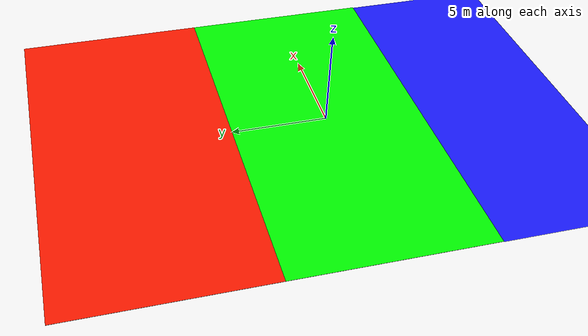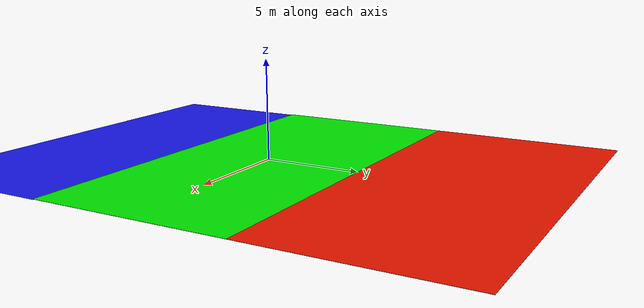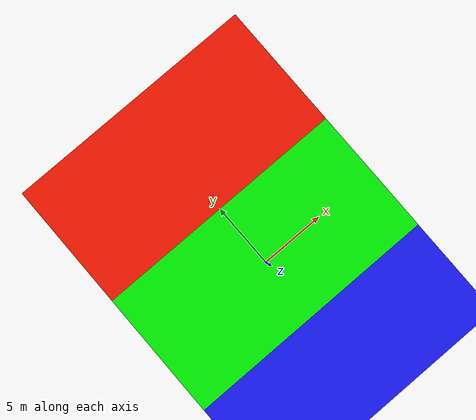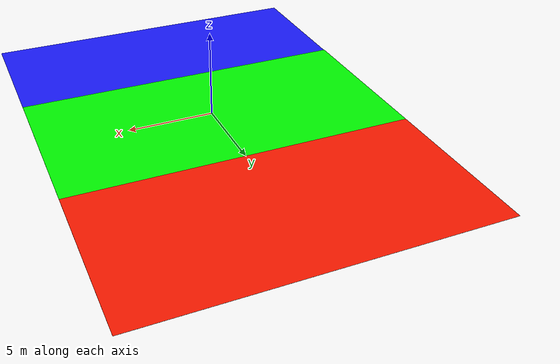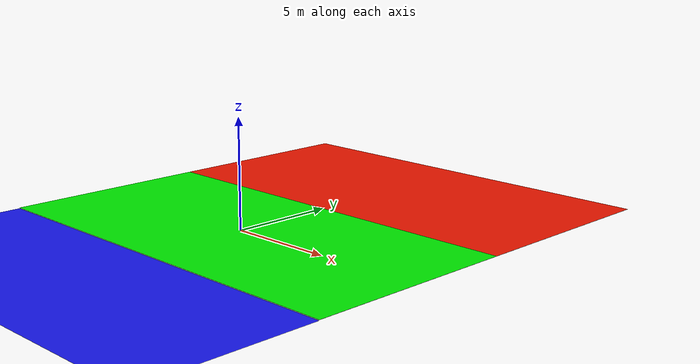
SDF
<?xml version='1.0' encoding='ASCII'?>
<sdf version='1.7'>
  <world name='terrain'>
    <physics type="ode">
      <max_step_size>0.003</max_step_size>
      <real_time_factor>1.0</real_time_factor>
    </physics>
    <plugin name='ignition::gazebo::systems::Physics' filename='libignition-gazebo-physics-system.so'/>
    <plugin name='ignition::gazebo::systems::UserCommands' filename='libignition-gazebo-user-commands-system.so'/>
    <plugin name='ignition::gazebo::systems::SceneBroadcaster' filename='libignition-gazebo-scene-broadcaster-system.so'/>
    <plugin name="ignition::gazebo::systems::Sensors" filename="libignition-gazebo-sensors-system.so">
      <render_engine>ogre2</render_engine>
    </plugin>
    <plugin name="ignition::gazebo::systems::Imu" filename="libignition-gazebo-imu-system.so"/>
    <plugin name="ignition::gazebo::systems::NavSat" filename="libignition-gazebo-navsat-system.so"/>
    <plugin name="ignition::rendering::material" filename="libignition-rendering-material.so"/>

    <scene>
      <ambient>1 1 1 1</ambient>
      <background>0.3 0.7 0.9 1</background>
      <shadows>0</shadows>
      <grid>true</grid>
    </scene>

    <spherical_coordinates>
      <surface_model>EARTH_WGS84</surface_model>
      <world_frame_orientation>ENU</world_frame_orientation>
      <latitude_deg>-22.986687</latitude_deg>
      <longitude_deg>-43.202501</longitude_deg>
      <elevation>0</elevation>
      <heading_deg>0</heading_deg>
    </spherical_coordinates>

    <model name='ground_plane_blue'>
      <static>true</static>
      <link name='link'>
        <collision name='collision'>
          <geometry>
            <plane>
              <normal>0.0 0.0 1</normal>
              <size>20 10</size>
            </plane>
          </geometry>
          <surface>
            <friction>
              <ode>
                <mu> 0.0 </mu>
                <mu2> 0.0 </mu2>
              </ode>
            </friction>
          </surface>
        </collision>

        <visual name='visual'>
            <geometry>
                <plane>
                    <normal>0.0 0.0 1</normal>
                    <size>20 10</size>
                </plane>
            </geometry>
            <material>
              <ambient>0.1 0.1 1 1</ambient>
              <diffuse>0.1 0.1 1 1</diffuse>
             <specular>0 0 1 1</specular>
             <emissive>0 0 1 1</emissive>
            </material>
        </visual>
      </link>
      <pose>0 -10 0 0 0 0</pose>
    </model>
    <model name='ground_plane_red'>
      <static>true</static>
      <link name='link'>
        <collision name='collision'>
          <geometry>
            <plane>
              <normal>0.0 0.0 1</normal>
              <size>20 10</size>
            </plane>
          </geometry>
          <surface>
            <friction>
              <ode>
                <mu> 0.0 </mu>
                <mu2> 0.0 </mu2>
              </ode>
            </friction>
          </surface>
        </collision>

        <visual name='visual'>
            <geometry>
                <plane>
                    <normal>0.0 0.0 1</normal>
                    <size>20 10</size>
                </plane>
            </geometry>
            <material>
              <ambient>1 0.1 0 1</ambient>
              <diffuse>1 0.1 0 1</diffuse>
             <specular>1 0 0 1 </specular>
             <emissive>1 0 0 1</emissive>
            </material>
        </visual>
      </link>
      <pose>0 10 0 0 0 0</pose>
    </model>

    <model name='ground_plane_green'>
      <static>true</static>
      <link name='link'>
        <collision name='collision'>
          <geometry>
            <plane>
              <normal>0.0 0.0 1</normal>
              <size>20 10</size>
            </plane>
          </geometry>
          <surface>
            <friction>
              <ode>
                <mu> 0.0 </mu>
                <mu2> 0.0 </mu2>
              </ode>
            </friction>
          </surface>
        </collision>

        <visual name='visual'>
            <geometry>
                <plane>
                    <normal>0.0 0.0 1</normal>
                    <size>20 10</size>
                </plane>
            </geometry>
            <material>
                <ambient>0 1 0 1</ambient>
		<diffuse>0 1 0 1</diffuse>
		<specular>0 1 0 1</specular>
		<emissive>0 1 0 1</emissive>
            </material>
        </visual>
      </link>
      <pose>0 0 0 0 0 0</pose>
    </model>

  </world>
</sdf>
